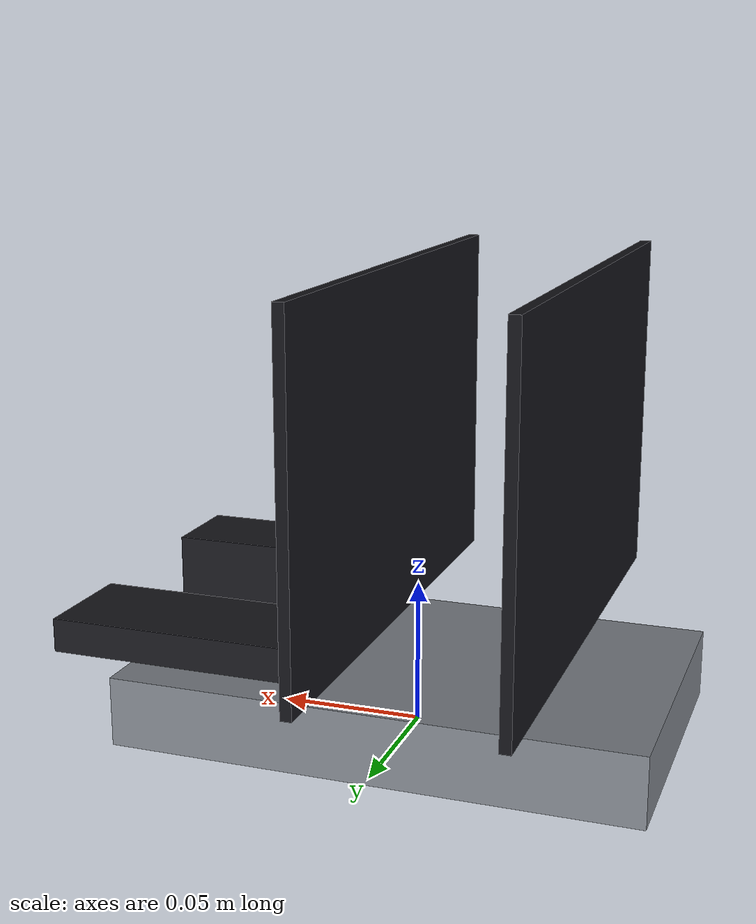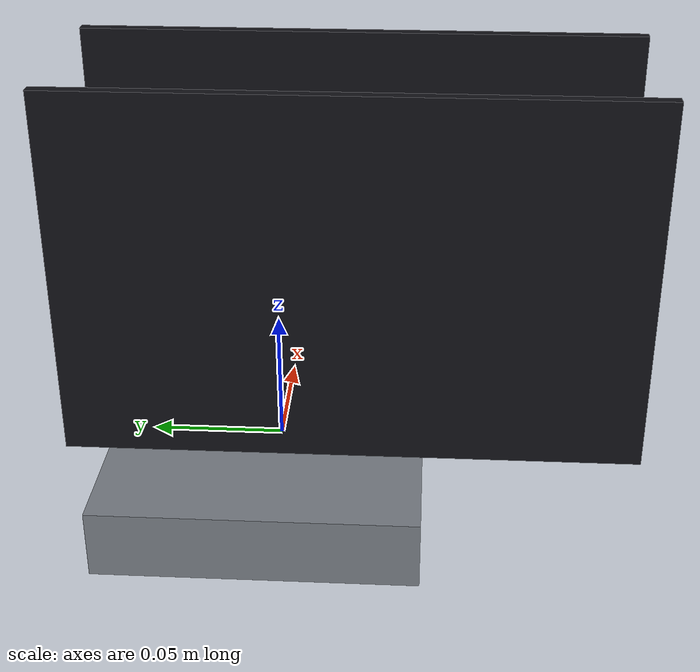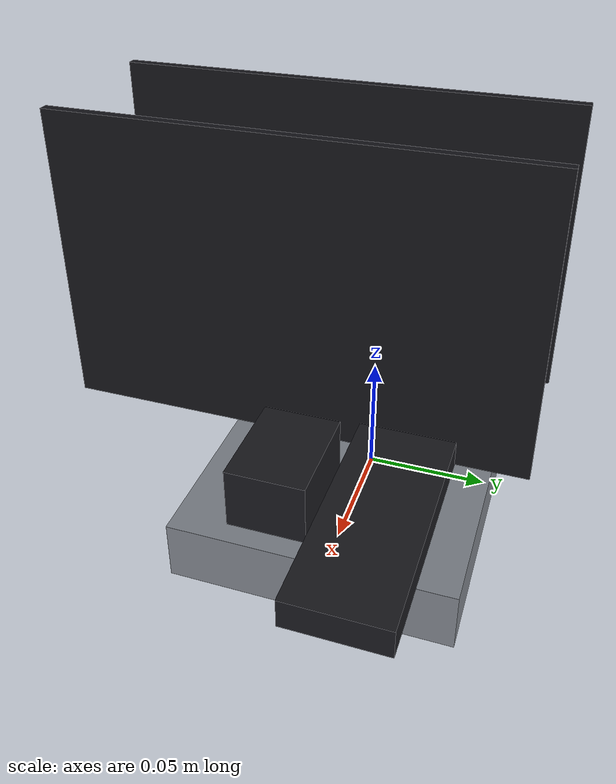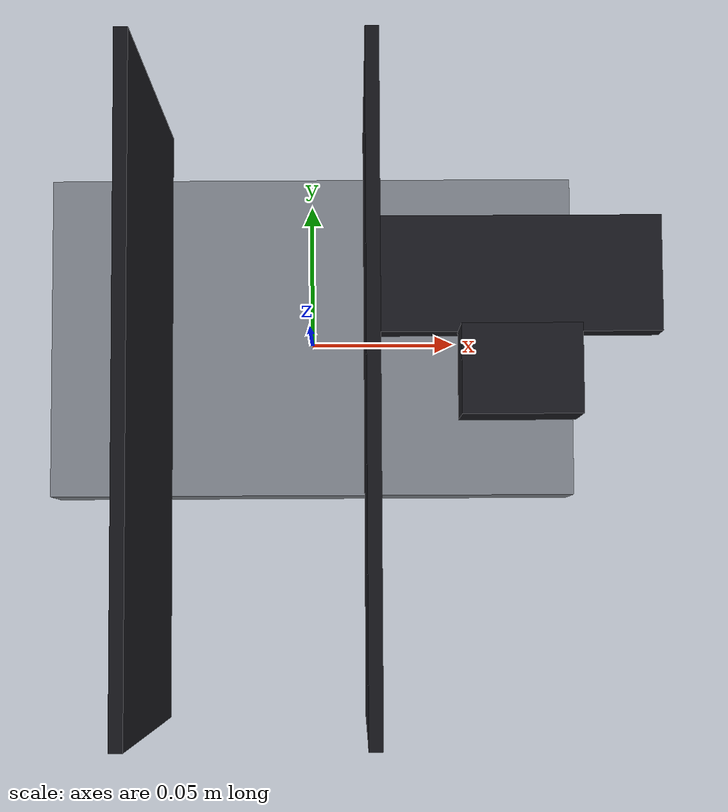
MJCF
<?xml version="1.0" encoding="utf-8"?>
<mujoco model="real_lab_qut_desk">
  <compiler angle="radian" autolimits="true"/>
  <default>
    <default class="body"><geom contype="1" conaffinity="1"/></default>
  </default>
  <worldbody>
    <body name="base">

      <geom type="box" size="0.09 0.055 0.012" pos="0 0 0.012" rgba="0.5 0.52 0.55 1" class="body"/>
      <geom type="box" size="0.002 0.1 0.065" pos="-0.05 -0.03 0.09" rgba="0.08 0.08 0.1 1" class="body"/>
      <geom type="box" size="0.002 0.1 0.065" pos="0.02 -0.03 0.09" rgba="0.08 0.08 0.1 1" class="body"/>
      <geom type="box" size="0.05 0.02 0.006" pos="0.07 0.02 0.03" rgba="0.1 0.1 0.12 1" class="body"/>
      <geom type="box" size="0.02 0.015 0.012" pos="0.07 -0.015 0.045" rgba="0.1 0.1 0.12 1" class="body"/>

    </body>
  </worldbody>
</mujoco>
